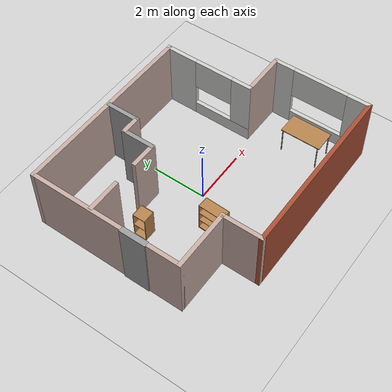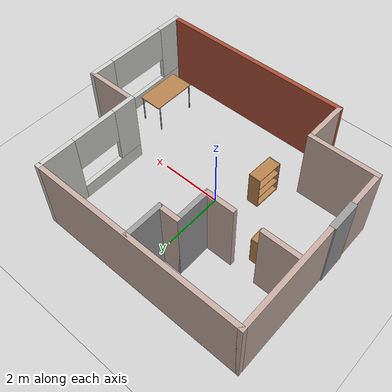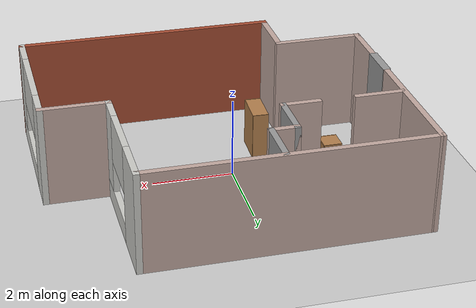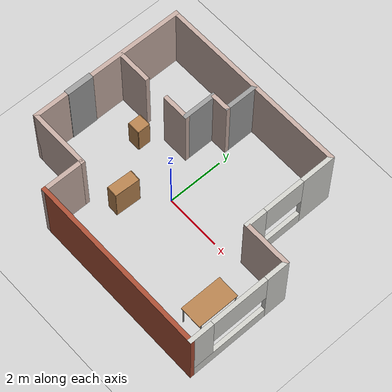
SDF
<sdf version="1.6">
 <world name="default">
  <light name="sun" type="directional">
   <pose>0 0 10 0 -0 0</pose>
   <diffuse>0.8 0.8 0.8 1</diffuse>
   <specular>0.2 0.2 0.2 1</specular>
   <attenuation>
    <range>1000</range>
    <constant>0.9</constant>
    <linear>0.01</linear>
    <quadratic>0.001</quadratic>
   </attenuation>
   <direction>-0.5 0.1 -0.9</direction>
  </light>
  <model name="ground_plane">
   <static>1</static>
   <link name="link">
    <collision name="collision">
     <geometry><plane><normal>0 0 1</normal><size>100 100</size></plane></geometry>
     <surface>
      <contact><collide_bitmask>65535</collide_bitmask></contact>
      <friction><ode><mu>100</mu><mu2>50</mu2></ode></friction>
     </surface>
    </collision>
    <visual name="visual">
     <cast_shadows>0</cast_shadows>
     <geometry><plane><normal>0 0 1</normal><size>100 100</size></plane></geometry>
     <material>
      <script><uri>file://media/materials/scripts/gazebo.material</uri><name>Gazebo/Grey</name></script>
     </material>
    </visual>
   </link>
  </model>
  <gravity>0 0 -9.8</gravity>
  <magnetic_field>6e-06 2.3e-05 -4.2e-05</magnetic_field>
  <atmosphere type="adiabatic"/>
  <physics name="default_physics" default="0" type="ode">
   <max_step_size>0.001</max_step_size>
   <real_time_factor>1</real_time_factor>
   <real_time_update_rate>1000</real_time_update_rate>
  </physics>
  <scene><ambient>0.4 0.4 0.4 1</ambient><background>0.7 0.7 0.7 1</background><shadows>1</shadows></scene>
  <spherical_coordinates>
   <surface_model>EARTH_WGS84</surface_model>
   <latitude_deg>0</latitude_deg>
   <longitude_deg>0</longitude_deg>
   <elevation>0</elevation>
   <heading_deg>0</heading_deg>
  </spherical_coordinates>
  <model name="Untitled">
   <pose>0.409678 0.119125 0 0 -0 0</pose>
   <link name="Door_0">
    <collision name="Door_0_Collision">
     <geometry><box><size>0.962 0.2 2.5</size></box></geometry>
     <pose>0 0 1.25 0 -0 0</pose>
    </collision>
    <visual name="Door_0_Visual">
     <pose>0 0 1.25 0 -0 0</pose>
     <geometry><box><size>0.962 0.2 2.5</size></box></geometry>
     <material>
      <script><uri>file://media/materials/scripts/gazebo.material</uri><name>Gazebo/Grey</name></script>
     </material>
    </visual>
    <pose>-4.23411 -0.424608 0 0 0 -1.57106</pose>
   </link>
   <link name="Wall_11">
    <collision name="Wall_11_Collision">
     <geometry><box><size>3.5 0.15 2.5</size></box></geometry>
     <pose>0 0 1.25 0 -0 0</pose>
    </collision>
    <visual name="Wall_11_Visual">
     <pose>0 0 1.25 0 -0 0</pose>
     <geometry><box><size>3.5 0.15 2.5</size></box></geometry>
     <material>
      <script><uri>file://media/materials/scripts/gazebo.material</uri><name>Gazebo/Grey</name></script>
      <ambient>0.760784 0.662745 0.627451 1</ambient>
     </material>
     <meta><layer>0</layer></meta>
    </visual>
    <pose>-4.225 1.8 0 0 0 -1.5708</pose>
   </link>
   <link name="Wall_13">
    <collision name="Wall_13_Collision">
     <geometry><box><size>1.25 0.15 2.5</size></box></geometry>
     <pose>0 0 1.25 0 -0 0</pose>
    </collision>
    <visual name="Wall_13_Visual">
     <pose>0 0 1.25 0 -0 0</pose>
     <geometry><box><size>1.25 0.15 2.5</size></box></geometry>
     <material>
      <script><uri>file://media/materials/scripts/gazebo.material</uri><name>Gazebo/Grey</name></script>
      <ambient>0.760784 0.662745 0.627451 1</ambient>
     </material>
     <meta><layer>0</layer></meta>
    </visual>
    <pose>-4.225 -1.525 0 0 0 -1.5708</pose>
   </link>
   <link name="Wall_16">
    <collision name="Wall_16_Collision">
     <geometry><box><size>2.25 0.15 2.5</size></box></geometry>
     <pose>0 0 1.25 0 -0 0</pose>
    </collision>
    <visual name="Wall_16_Visual">
     <pose>0 0 1.25 0 -0 0</pose>
     <geometry><box><size>2.25 0.15 2.5</size></box></geometry>
     <material>
      <script><uri>file://media/materials/scripts/gazebo.material</uri><name>Gazebo/Grey</name></script>
      <ambient>0.760784 0.662745 0.627451 1</ambient>
     </material>
     <meta><layer>0</layer></meta>
    </visual>
    <pose>-3.175 -2.075 0 0 -0 0</pose>
   </link>
   <link name="Wall_18">
    <collision name="Wall_18_Collision">
     <geometry><box><size>1.25 0.15 2.5</size></box></geometry>
     <pose>0 0 1.25 0 -0 0</pose>
    </collision>
    <visual name="Wall_18_Visual">
     <pose>0 0 1.25 0 -0 0</pose>
     <geometry><box><size>1.25 0.15 2.5</size></box></geometry>
     <material>
      <script><uri>file://media/materials/scripts/gazebo.material</uri><name>Gazebo/Grey</name></script>
      <ambient>1 1 1 1</ambient>
     </material>
     <meta><layer>0</layer></meta>
    </visual>
    <pose>-0.649535 2.87722 0 0 0 -1.5708</pose>
   </link>
   <link name="Wall_19">
    <collision name="Wall_19_Collision">
     <geometry><box><size>0.75 0.15 2.5</size></box></geometry>
     <pose>0 0 1.25 0 -0 0</pose>
    </collision>
    <visual name="Wall_19_Visual">
     <pose>0 0 1.25 0 -0 0</pose>
     <geometry><box><size>0.75 0.15 2.5</size></box></geometry>
     <material>
      <script><uri>file://media/materials/scripts/gazebo.material</uri><name>Gazebo/Grey</name></script>
      <ambient>0.760784 0.662745 0.627451 1</ambient>
     </material>
     <meta><layer>0</layer></meta>
    </visual>
    <pose>-0.949535 2.32722 0 0 -0 3.14159</pose>
   </link>
   <link name="Wall_2">
    <collision name="Wall_2_Collision">
     <geometry><box><size>7 0.15 2.5</size></box></geometry>
     <pose>0 0 1.25 0 -0 0</pose>
    </collision>
    <visual name="Wall_2_Visual">
     <pose>0 0 1.25 0 -0 0</pose>
     <geometry><box><size>7 0.15 2.5</size></box></geometry>
     <material>
      <script><uri>file://media/materials/scripts/gazebo.material</uri><name>Gazebo/Grey</name></script>
      <ambient>0.760784 0.662745 0.627451 1</ambient>
     </material>
     <meta><layer>0</layer></meta>
    </visual>
    <pose>-0.8 3.475 0 0 -0 0</pose>
   </link>
   <link name="Wall_20">
    <collision name="Wall_20_Collision">
     <geometry><box><size>1.25 0.15 2.5</size></box></geometry>
     <pose>0 0 1.25 0 -0 0</pose>
    </collision>
    <visual name="Wall_20_Visual">
     <pose>0 0 1.25 0 -0 0</pose>
     <geometry><box><size>1.25 0.15 2.5</size></box></geometry>
     <material>
      <script><uri>file://media/materials/scripts/gazebo.material</uri><name>Gazebo/Grey</name></script>
      <ambient>1 1 1 1</ambient>
     </material>
     <meta><layer>0</layer></meta>
    </visual>
    <pose>-1.24954 1.77722 0 0 0 -1.5708</pose>
   </link>
   <link name="Wall_21">
    <collision name="Wall_21_Collision">
     <geometry><box><size>1 0.15 2.5</size></box></geometry>
     <pose>0 0 1.25 0 -0 0</pose>
    </collision>
    <visual name="Wall_21_Visual">
     <pose>0 0 1.25 0 -0 0</pose>
     <geometry><box><size>1 0.15 2.5</size></box></geometry>
     <material>
      <script><uri>file://media/materials/scripts/gazebo.material</uri><name>Gazebo/Grey</name></script>
      <ambient>0.760784 0.662745 0.627451 1</ambient>
     </material>
     <meta><layer>0</layer></meta>
    </visual>
    <pose>-1.67454 1.22722 0 0 -0 3.14159</pose>
   </link>
   <link name="Wall_23">
    <collision name="Wall_23_Collision">
     <geometry><box><size>1.25 0.15 2.5</size></box></geometry>
     <pose>0 0 1.25 0 -0 0</pose>
    </collision>
    <visual name="Wall_23_Visual">
     <pose>0 0 1.25 0 -0 0</pose>
     <geometry><box><size>1.25 0.15 2.5</size></box></geometry>
     <material>
      <script><uri>file://media/materials/scripts/gazebo.material</uri><name>Gazebo/Grey</name></script>
      <ambient>0.760784 0.662745 0.627451 1</ambient>
     </material>
     <meta><layer>0</layer></meta>
    </visual>
    <pose>-3.60654 1.22722 0 0 -0 3.14159</pose>
   </link>
   <link name="Wall_3">
    <pose>2.625 1.8 0 0 0 -1.5708</pose>
    <visual name="Wall_3_Visual_0">
     <pose>-1.12576 0 1.25 0 -0 0</pose>
     <geometry><box><size>1.24849 0.15 2.5</size></box></geometry>
     <material>
      <script><uri>file://media/materials/scripts/gazebo.material</uri><name>Gazebo/CeilingTiled</name></script>
      <ambient>1 1 1 1</ambient>
     </material>
     <meta><layer>0</layer></meta>
    </visual>
    <collision name="Wall_3_Collision_0">
     <geometry><box><size>1.24849 0.15 2.5</size></box></geometry>
     <pose>-1.12576 0 1.25 0 -0 0</pose>
    </collision>
    <visual name="Wall_3_Visual_1">
     <pose>0.624243 0 0.25 0 -0 0</pose>
     <geometry><box><size>2.25151 0.15 0.5</size></box></geometry>
     <material>
      <script><uri>file://media/materials/scripts/gazebo.material</uri><name>Gazebo/CeilingTiled</name></script>
      <ambient>1 1 1 1</ambient>
     </material>
     <meta><layer>0</layer></meta>
    </visual>
    <collision name="Wall_3_Collision_1">
     <geometry><box><size>2.25151 0.15 0.5</size></box></geometry>
     <pose>0.624243 0 0.25 0 -0 0</pose>
    </collision>
    <visual name="Wall_3_Visual_2">
     <pose>1.35844 0 1.5 0 -0 0</pose>
     <geometry><box><size>0.783117 0.15 2</size></box></geometry>
     <material>
      <script><uri>file://media/materials/scripts/gazebo.material</uri><name>Gazebo/CeilingTiled</name></script>
      <ambient>1 1 1 1</ambient>
     </material>
     <meta><layer>0</layer></meta>
    </visual>
    <collision name="Wall_3_Collision_2">
     <geometry><box><size>0.783117 0.15 2</size></box></geometry>
     <pose>1.35844 0 1.5 0 -0 0</pose>
    </collision>
    <visual name="Wall_3_Visual_3">
     <pose>0.232685 0 1.9 0 -0 0</pose>
     <geometry><box><size>1.4684 0.15 1.2</size></box></geometry>
     <material>
      <script><uri>file://media/materials/scripts/gazebo.material</uri><name>Gazebo/CeilingTiled</name></script>
      <ambient>1 1 1 1</ambient>
     </material>
     <meta><layer>0</layer></meta>
    </visual>
    <collision name="Wall_3_Collision_3">
     <geometry><box><size>1.4684 0.15 1.2</size></box></geometry>
     <pose>0.232685 0 1.9 0 -0 0</pose>
    </collision>
   </link>
   <link name="Wall_4">
    <collision name="Wall_4_Collision">
     <geometry><box><size>1.75 0.15 2.5</size></box></geometry>
     <pose>0 0 1.25 0 -0 0</pose>
    </collision>
    <visual name="Wall_4_Visual">
     <pose>0 0 1.25 0 -0 0</pose>
     <geometry><box><size>1.75 0.15 2.5</size></box></geometry>
     <material>
      <script><uri>file://media/materials/scripts/gazebo.material</uri><name>Gazebo/Grey</name></script>
      <ambient>0.760784 0.662745 0.627451 1</ambient>
     </material>
     <meta><layer>0</layer></meta>
    </visual>
    <pose>3.425 0.125 0 0 -0 0</pose>
   </link>
   <link name="Wall_5">
    <pose>4.225 -1.675 0 0 0 -1.5708</pose>
    <visual name="Wall_5_Visual_0">
     <pose>-1.45834 0 1.25 0 -0 0</pose>
     <geometry><box><size>0.833328 0.15 2.5</size></box></geometry>
     <material>
      <script><uri>file://media/materials/scripts/gazebo.material</uri><name>Gazebo/CeilingTiled</name></script>
      <ambient>0.760784 0.662745 0.627451 1</ambient>
     </material>
     <meta><layer>0</layer></meta>
    </visual>
    <collision name="Wall_5_Collision_0">
     <geometry><box><size>0.833328 0.15 2.5</size></box></geometry>
     <pose>-1.45834 0 1.25 0 -0 0</pose>
    </collision>
    <visual name="Wall_5_Visual_1">
     <pose>0.416664 0 0.25 0 -0 0</pose>
     <geometry><box><size>2.91667 0.15 0.5</size></box></geometry>
     <material>
      <script><uri>file://media/materials/scripts/gazebo.material</uri><name>Gazebo/CeilingTiled</name></script>
      <ambient>0.760784 0.662745 0.627451 1</ambient>
     </material>
     <meta><layer>0</layer></meta>
    </visual>
    <collision name="Wall_5_Collision_1">
     <geometry><box><size>2.91667 0.15 0.5</size></box></geometry>
     <pose>0.416664 0 0.25 0 -0 0</pose>
    </collision>
    <visual name="Wall_5_Visual_2">
     <pose>1.43612 0 1.5 0 -0 0</pose>
     <geometry><box><size>0.877768 0.15 2</size></box></geometry>
     <material>
      <script><uri>file://media/materials/scripts/gazebo.material</uri><name>Gazebo/CeilingTiled</name></script>
      <ambient>0.760784 0.662745 0.627451 1</ambient>
     </material>
     <meta><layer>0</layer></meta>
    </visual>
    <collision name="Wall_5_Collision_2">
     <geometry><box><size>0.877768 0.15 2</size></box></geometry>
     <pose>1.43612 0 1.5 0 -0 0</pose>
    </collision>
    <visual name="Wall_5_Visual_3">
     <pose>-0.02222 0 1.9 0 -0 0</pose>
     <geometry><box><size>2.0389 0.15 1.2</size></box></geometry>
     <material>
      <script><uri>file://media/materials/scripts/gazebo.material</uri><name>Gazebo/CeilingTiled</name></script>
      <ambient>0.760784 0.662745 0.627451 1</ambient>
     </material>
     <meta><layer>0</layer></meta>
    </visual>
    <collision name="Wall_5_Collision_3">
     <geometry><box><size>2.0389 0.15 1.2</size></box></geometry>
     <pose>-0.02222 0 1.9 0 -0 0</pose>
    </collision>
   </link>
   <link name="Wall_6">
    <collision name="Wall_6_Collision">
     <geometry><box><size>6.5 0.15 2.5</size></box></geometry>
     <pose>0 0 1.25 0 -0 0</pose>
    </collision>
    <visual name="Wall_6_Visual">
     <pose>0 0 1.25 0 -0 0</pose>
     <geometry><box><size>6.5 0.15 2.5</size></box></geometry>
     <material>
      <script><uri>file://media/materials/scripts/gazebo.material</uri><name>Gazebo/Bricks</name></script>
      <ambient>1 1 1 1</ambient>
     </material>
     <meta><layer>0</layer></meta>
    </visual>
    <pose>1.05 -3.475 0 0 -0 3.14159</pose>
   </link>
   <link name="Wall_7">
    <collision name="Wall_7_Collision">
     <geometry><box><size>1.5 0.15 2.5</size></box></geometry>
     <pose>0 0 1.25 0 -0 0</pose>
    </collision>
    <visual name="Wall_7_Visual">
     <pose>0 0 1.25 0 -0 0</pose>
     <geometry><box><size>1.5 0.15 2.5</size></box></geometry>
     <material>
      <script><uri>file://media/materials/scripts/gazebo.material</uri><name>Gazebo/Grey</name></script>
      <ambient>0.760784 0.662745 0.627451 1</ambient>
     </material>
     <meta><layer>0</layer></meta>
    </visual>
    <pose>-2.125 -2.8 0 0 -0 1.5708</pose>
   </link>
   <static>1</static>
  </model>
  <model name="cabinet">
   <static>1</static>
   <link name="cabinet_bottom_plate">
    <inertial>
     <pose>0 0 -1 0 -0 0</pose>
     <inertia><ixx>2.05</ixx><ixy>0</ixy><ixz>0</ixz><iyy>2.05</iyy><iyz>0</iyz><izz>2.05</izz></inertia>
     <mass>25</mass>
    </inertial>
    <collision name="cabinet_bottom_plate_geom">
     <pose>0 0 0.01 0 -0 0</pose>
     <geometry><box><size>0.45 0.45 0.02</size></box></geometry>
    </collision>
    <visual name="cabinet_bottom_plate_geom_visual">
     <pose>0 0 0.01 0 -0 0</pose>
     <geometry><box><size>0.45 0.45 0.02</size></box></geometry>
     <material>
      <script><uri>file://media/materials/scripts/gazebo.material</uri><name>Gazebo/Wood</name></script>
     </material>
    </visual>
    <collision name="cabinet_bottom_plate_geom_cabinet_back_plate">
     <pose>0.235 0 0.51 0 -0 0</pose>
     <geometry><box><size>0.02 0.45 1.02</size></box></geometry>
    </collision>
    <visual name="cabinet_bottom_plate_geom_cabinet_back_plate_visual">
     <pose>0.235 0 0.51 0 -0 0</pose>
     <geometry><box><size>0.02 0.45 1.02</size></box></geometry>
     <material>
      <script><uri>file://media/materials/scripts/gazebo.material</uri><name>Gazebo/Wood</name></script>
     </material>
    </visual>
    <collision name="cabinet_bottom_plate_geom_cabinet_left_plate">
     <pose>0 0.235 0.51 0 -0 0</pose>
     <geometry><box><size>0.45 0.02 1.02</size></box></geometry>
    </collision>
    <visual name="cabinet_bottom_plate_geom_cabinet_left_plate_visual">
     <pose>0 0.235 0.51 0 -0 0</pose>
     <geometry><box><size>0.45 0.02 1.02</size></box></geometry>
     <material>
      <script><uri>file://media/materials/scripts/gazebo.material</uri><name>Gazebo/Wood</name></script>
     </material>
    </visual>
    <collision name="cabinet_bottom_plate_geom_cabinet_middle_plate">
     <pose>0 0 0.51 0 -0 0</pose>
     <geometry><box><size>0.45 0.45 0.02</size></box></geometry>
    </collision>
    <visual name="cabinet_bottom_plate_geom_cabinet_middle_plate_visual">
     <pose>0 0 0.51 0 -0 0</pose>
     <geometry><box><size>0.45 0.45 0.02</size></box></geometry>
     <material>
      <script><uri>file://media/materials/scripts/gazebo.material</uri><name>Gazebo/Wood</name></script>
     </material>
    </visual>
    <collision name="cabinet_bottom_plate_geom_cabinet_right_plate">
     <pose>0 -0.235 0.51 0 -0 0</pose>
     <geometry><box><size>0.45 0.02 1.02</size></box></geometry>
    </collision>
    <visual name="cabinet_bottom_plate_geom_cabinet_right_plate_visual">
     <pose>0 -0.235 0.51 0 -0 0</pose>
     <geometry><box><size>0.45 0.02 1.02</size></box></geometry>
     <material>
      <script><uri>file://media/materials/scripts/gazebo.material</uri><name>Gazebo/Wood</name></script>
     </material>
    </visual>
    <collision name="cabinet_bottom_plate_geom_cabinet_top_plate">
     <pose>0 0 1.01 0 -0 0</pose>
     <geometry><box><size>0.45 0.45 0.02</size></box></geometry>
    </collision>
    <visual name="cabinet_bottom_plate_geom_cabinet_top_plate_visual">
     <pose>0 0 1.01 0 -0 0</pose>
     <geometry><box><size>0.45 0.45 0.02</size></box></geometry>
     <material>
      <script><uri>file://media/materials/scripts/gazebo.material</uri><name>Gazebo/Wood</name></script>
     </material>
    </visual>
   </link>
   <pose>-2.26431 0.689044 -0.00061 0 -0 0</pose>
  </model>
  <model name="bookshelf">
   <static>1</static>
   <link name="link">
    <inertial><mass>1</mass></inertial>
    <collision name="back">
     <pose>0 0.005 0.6 0 -0 0</pose>
     <geometry><box><size>0.9 0.01 1.2</size></box></geometry>
    </collision>
    <visual name="visual1">
     <pose>0 0.005 0.6 0 -0 0</pose>
     <geometry><box><size>0.9 0.01 1.2</size></box></geometry>
     <material>
      <script><uri>file://media/materials/scripts/gazebo.material</uri><name>Gazebo/Wood</name></script>
     </material>
    </visual>
    <collision name="left_side">
     <pose>0.45 -0.195 0.6 0 -0 0</pose>
     <geometry><box><size>0.02 0.4 1.2</size></box></geometry>
    </collision>
    <visual name="visual2">
     <pose>0.45 -0.195 0.6 0 -0 0</pose>
     <geometry><box><size>0.02 0.4 1.2</size></box></geometry>
     <material>
      <script><uri>file://media/materials/scripts/gazebo.material</uri><name>Gazebo/Wood</name></script>
     </material>
    </visual>
    <collision name="right_side">
     <pose>-0.45 -0.195 0.6 0 -0 0</pose>
     <geometry><box><size>0.02 0.4 1.2</size></box></geometry>
    </collision>
    <visual name="visual3">
     <pose>-0.45 -0.195 0.6 0 -0 0</pose>
     <geometry><box><size>0.02 0.4 1.2</size></box></geometry>
     <material>
      <script><uri>file://media/materials/scripts/gazebo.material</uri><name>Gazebo/Wood</name></script>
     </material>
    </visual>
    <collision name="bottom">
     <pose>0 -0.195 0.03 0 -0 0</pose>
     <geometry><box><size>0.88 0.4 0.06</size></box></geometry>
    </collision>
    <visual name="visual4">
     <pose>0 -0.195 0.03 0 -0 0</pose>
     <geometry><box><size>0.88 0.4 0.06</size></box></geometry>
     <material>
      <script><uri>file://media/materials/scripts/gazebo.material</uri><name>Gazebo/Wood</name></script>
     </material>
    </visual>
    <collision name="top">
     <pose>0 -0.195 1.19 0 -0 0</pose>
     <geometry><box><size>0.88 0.4 0.02</size></box></geometry>
    </collision>
    <visual name="visual5">
     <pose>0 -0.195 1.19 0 -0 0</pose>
     <geometry><box><size>0.88 0.4 0.02</size></box></geometry>
     <material>
      <script><uri>file://media/materials/scripts/gazebo.material</uri><name>Gazebo/Wood</name></script>
     </material>
    </visual>
    <collision name="low_shelf">
     <pose>0 -0.195 0.43 0 -0 0</pose>
     <geometry><box><size>0.88 0.4 0.02</size></box></geometry>
    </collision>
    <visual name="visual6">
     <pose>0 -0.195 0.43 0 -0 0</pose>
     <geometry><box><size>0.88 0.4 0.02</size></box></geometry>
     <material>
      <script><uri>file://media/materials/scripts/gazebo.material</uri><name>Gazebo/Wood</name></script>
     </material>
    </visual>
    <collision name="high_shelf">
     <pose>0 -0.195 0.8 0 -0 0</pose>
     <geometry><box><size>0.88 0.4 0.02</size></box></geometry>
    </collision>
    <visual name="visual7">
     <pose>0 -0.195 0.8 0 -0 0</pose>
     <geometry><box><size>0.88 0.4 0.02</size></box></geometry>
     <material>
      <script><uri>file://media/materials/scripts/gazebo.material</uri><name>Gazebo/Wood</name></script>
     </material>
    </visual>
   </link>
   <pose>-0.719014 -1.10322 0 0 0 -1.61132</pose>
  </model>
  <model name="table">
   <static>1</static>
   <link name="link">
    <collision name="surface">
     <pose>0 0 1 0 -0 0</pose>
     <geometry><box><size>1.5 0.8 0.03</size></box></geometry>
     <surface><friction><ode><mu>0.6</mu><mu2>0.6</mu2></ode></friction></surface>
    </collision>
    <visual name="visual1">
     <pose>0 0 1 0 -0 0</pose>
     <geometry><box><size>1.5 0.8 0.03</size></box></geometry>
     <material>
      <script><uri>file://media/materials/scripts/gazebo.material</uri><name>Gazebo/Wood</name></script>
     </material>
    </visual>
    <collision name="front_left_leg">
     <pose>0.68 0.38 0.5 0 -0 0</pose>
     <geometry><cylinder><radius>0.02</radius><length>1</length></cylinder></geometry>
    </collision>
    <visual name="front_left_leg">
     <pose>0.68 0.38 0.5 0 -0 0</pose>
     <geometry><cylinder><radius>0.02</radius><length>1</length></cylinder></geometry>
     <material>
      <script><uri>file://media/materials/scripts/gazebo.material</uri><name>Gazebo/Grey</name></script>
     </material>
    </visual>
    <collision name="front_right_leg">
     <pose>0.68 -0.38 0.5 0 -0 0</pose>
     <geometry><cylinder><radius>0.02</radius><length>1</length></cylinder></geometry>
    </collision>
    <visual name="front_right_leg">
     <pose>0.68 -0.38 0.5 0 -0 0</pose>
     <geometry><cylinder><radius>0.02</radius><length>1</length></cylinder></geometry>
     <material>
      <script><uri>file://media/materials/scripts/gazebo.material</uri><name>Gazebo/Grey</name></script>
     </material>
    </visual>
    <collision name="back_right_leg">
     <pose>-0.68 -0.38 0.5 0 -0 0</pose>
     <geometry><cylinder><radius>0.02</radius><length>1</length></cylinder></geometry>
    </collision>
    <visual name="back_right_leg">
     <pose>-0.68 -0.38 0.5 0 -0 0</pose>
     <geometry><cylinder><radius>0.02</radius><length>1</length></cylinder></geometry>
     <material>
      <script><uri>file://media/materials/scripts/gazebo.material</uri><name>Gazebo/Grey</name></script>
     </material>
    </visual>
    <collision name="back_left_leg">
     <pose>-0.68 0.38 0.5 0 -0 0</pose>
     <geometry><cylinder><radius>0.02</radius><length>1</length></cylinder></geometry>
    </collision>
    <visual name="back_left_leg">
     <pose>-0.68 0.38 0.5 0 -0 0</pose>
     <geometry><cylinder><radius>0.02</radius><length>1</length></cylinder></geometry>
     <material>
      <script><uri>file://media/materials/scripts/gazebo.material</uri><name>Gazebo/Grey</name></script>
     </material>
    </visual>
   </link>
   <pose>3.62963 -1.72044 0 0 0 -1.5741</pose>
  </model>
 </world>
</sdf>
